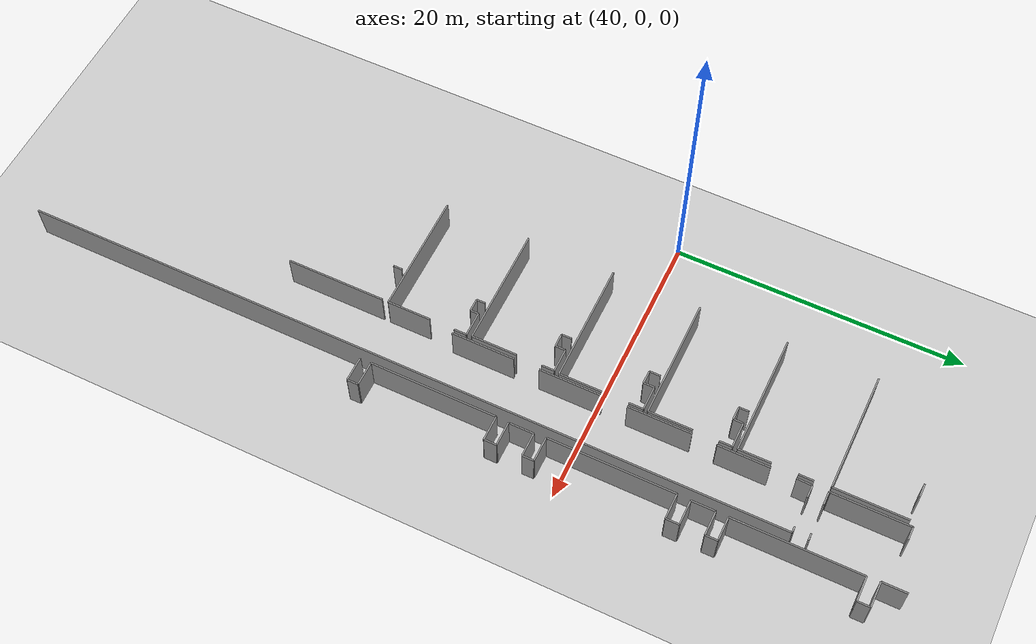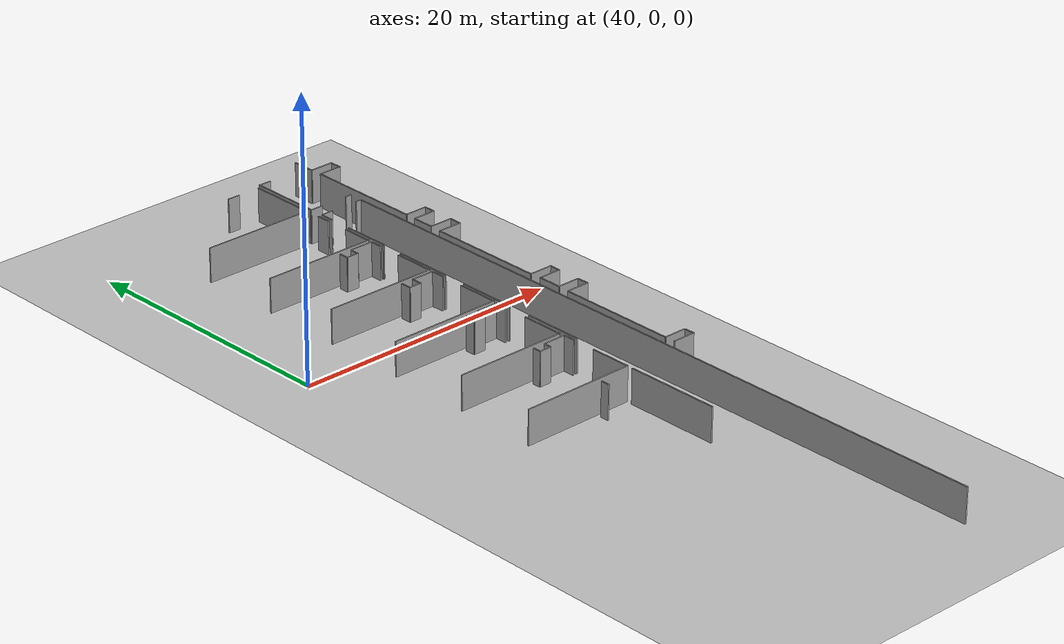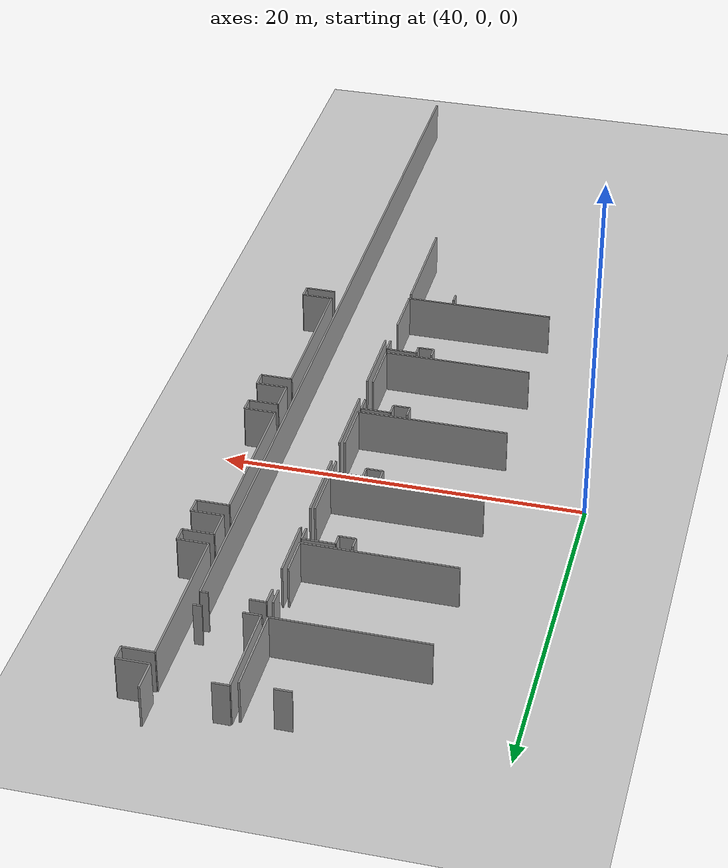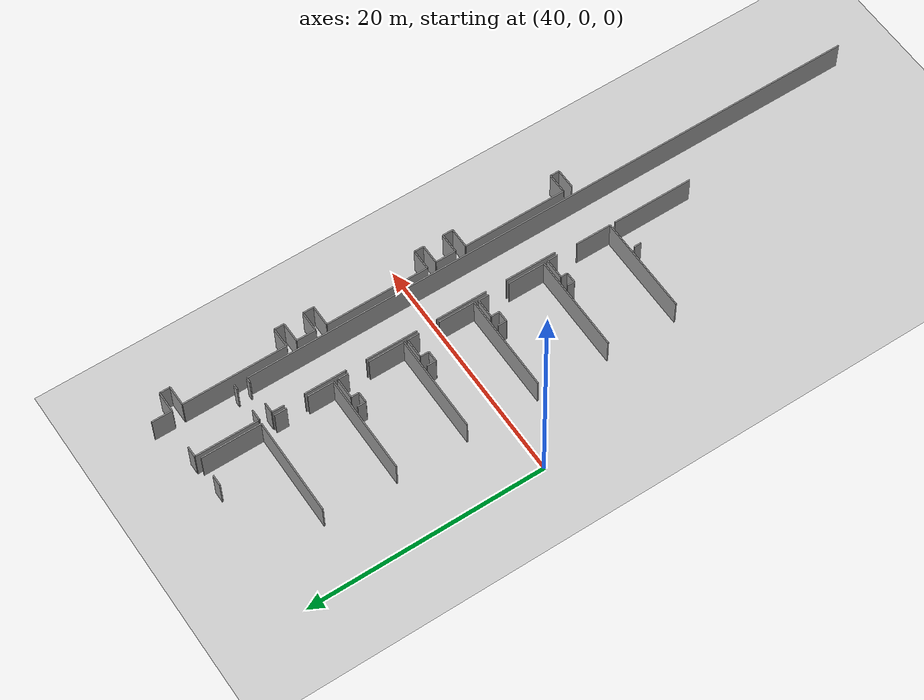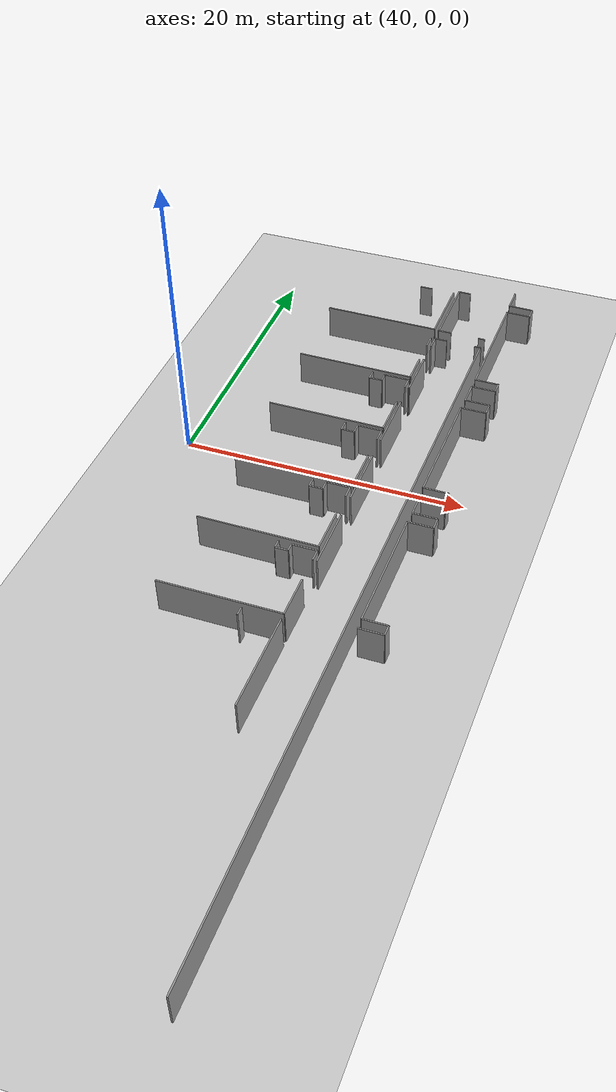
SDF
<sdf version="1.6">
 <world name="default">
  <model name="ground_plane">
   <static>1</static>
   <link name="link">
    <collision name="collision">
     <geometry><plane><normal>0 0 1</normal><size>100 100</size></plane></geometry>
     <surface><friction><ode><mu>100</mu><mu2>50</mu2></ode></friction></surface>
    </collision>
    <visual name="visual">
     <cast_shadows>0</cast_shadows>
     <geometry><plane><normal>0 0 1</normal><size>100 100</size></plane></geometry>
     <material>
      <script><uri>file://media/materials/scripts/gazebo.material</uri><name>Gazebo/Grey</name></script>
     </material>
    </visual>
   </link>
  </model>
  <model name="50036893">
   <static>1</static>
   <link name="Wall_328">
    <collision name="Wall_328_Collision">
     <geometry><box><size>1.70178230628 0.1 2.5</size></box></geometry>
     <pose>0.850891153141 0 1.25 0 0 0</pose>
    </collision>
    <visual name="Wall_328_Visual">
     <pose>0.850891153141 0 1.25 0 0 0</pose>
     <geometry><box><size>1.70178230628 0.1 2.5</size></box></geometry>
     <material>
      <script><uri>file://media/materials/scripts/gazebo.material</uri><name>Gazebo/Grey</name></script>
      <ambient>1 1 1 1</ambient>
     </material>
    </visual>
    <pose>131.874940558 -82.4677111535 0 0 0 0.0</pose>
   </link>
   <link name="Wall_329">
    <collision name="Wall_329_Collision">
     <geometry><box><size>0.769225891946 0.1 2.5</size></box></geometry>
     <pose>0.384612945973 0 1.25 0 0 0</pose>
    </collision>
    <visual name="Wall_329_Visual">
     <pose>0.384612945973 0 1.25 0 0 0</pose>
     <geometry><box><size>0.769225891946 0.1 2.5</size></box></geometry>
     <material>
      <script><uri>file://media/materials/scripts/gazebo.material</uri><name>Gazebo/Grey</name></script>
      <ambient>1 1 1 1</ambient>
     </material>
    </visual>
    <pose>133.576722864 -82.4677111535 0 0 0 1.57079632679</pose>
   </link>
   <link name="Wall_330">
    <collision name="Wall_330_Collision">
     <geometry><box><size>1.70178230628 0.1 2.5</size></box></geometry>
     <pose>0.850891153141 0 1.25 0 0 0</pose>
    </collision>
    <visual name="Wall_330_Visual">
     <pose>0.850891153141 0 1.25 0 0 0</pose>
     <geometry><box><size>1.70178230628 0.1 2.5</size></box></geometry>
     <material>
      <script><uri>file://media/materials/scripts/gazebo.material</uri><name>Gazebo/Grey</name></script>
      <ambient>1 1 1 1</ambient>
     </material>
    </visual>
    <pose>133.576722864 -81.6984852616 0 0 0 3.14159265359</pose>
   </link>
   <link name="Wall_331">
    <collision name="Wall_331_Collision">
     <geometry><box><size>8.80133403501 0.1 2.5</size></box></geometry>
     <pose>4.40066701751 0 1.25 0 0 0</pose>
    </collision>
    <visual name="Wall_331_Visual">
     <pose>4.40066701751 0 1.25 0 0 0</pose>
     <geometry><box><size>8.80133403501 0.1 2.5</size></box></geometry>
     <material>
      <script><uri>file://media/materials/scripts/gazebo.material</uri><name>Gazebo/Grey</name></script>
      <ambient>1 1 1 1</ambient>
     </material>
    </visual>
    <pose>131.874940558 -81.6984852616 0 0 0 1.57079632679</pose>
   </link>
   <link name="Wall_332">
    <collision name="Wall_332_Collision">
     <geometry><box><size>1.73982512982 0.1 2.5</size></box></geometry>
     <pose>0.869912564911 0 1.25 0 0 0</pose>
    </collision>
    <visual name="Wall_332_Visual">
     <pose>0.869912564911 0 1.25 0 0 0</pose>
     <geometry><box><size>1.73982512982 0.1 2.5</size></box></geometry>
     <material>
      <script><uri>file://media/materials/scripts/gazebo.material</uri><name>Gazebo/Grey</name></script>
      <ambient>1 1 1 1</ambient>
     </material>
    </visual>
    <pose>131.874940558 -72.8971512266 0 0 0 0.0</pose>
   </link>
   <link name="Wall_333">
    <collision name="Wall_333_Collision">
     <geometry><box><size>0.869912564911 0.1 2.5</size></box></geometry>
     <pose>0.434956282455 0 1.25 0 0 0</pose>
    </collision>
    <visual name="Wall_333_Visual">
     <pose>0.434956282455 0 1.25 0 0 0</pose>
     <geometry><box><size>0.869912564911 0.1 2.5</size></box></geometry>
     <material>
      <script><uri>file://media/materials/scripts/gazebo.material</uri><name>Gazebo/Grey</name></script>
      <ambient>1 1 1 1</ambient>
     </material>
    </visual>
    <pose>133.614765688 -72.8971512266 0 0 0 1.57079632679</pose>
   </link>
   <link name="Wall_334">
    <collision name="Wall_334_Collision">
     <geometry><box><size>1.6891013651 0.1 2.5</size></box></geometry>
     <pose>0.844550682552 0 1.25 0 0 0</pose>
    </collision>
    <visual name="Wall_334_Visual">
     <pose>0.844550682552 0 1.25 0 0 0</pose>
     <geometry><box><size>1.6891013651 0.1 2.5</size></box></geometry>
     <material>
      <script><uri>file://media/materials/scripts/gazebo.material</uri><name>Gazebo/Grey</name></script>
      <ambient>1 1 1 1</ambient>
     </material>
    </visual>
    <pose>133.614765688 -72.0272386617 0 0 0 3.14159265359</pose>
   </link>
   <link name="Wall_335">
    <collision name="Wall_335_Collision">
     <geometry><box><size>1.72765142629 0.1 2.5</size></box></geometry>
     <pose>0.863825713144 0 1.25 0 0 0</pose>
    </collision>
    <visual name="Wall_335_Visual">
     <pose>0.863825713144 0 1.25 0 0 0</pose>
     <geometry><box><size>1.72765142629 0.1 2.5</size></box></geometry>
     <material>
      <script><uri>file://media/materials/scripts/gazebo.material</uri><name>Gazebo/Grey</name></script>
      <ambient>1 1 1 1</ambient>
     </material>
    </visual>
    <pose>131.925664323 -72.0272386617 0 0 0 1.57079632679</pose>
   </link>
   <link name="Wall_336">
    <collision name="Wall_336_Collision">
     <geometry><box><size>1.66373948274 0.1 2.5</size></box></geometry>
     <pose>0.831869741372 0 1.25 0 0 0</pose>
    </collision>
    <visual name="Wall_336_Visual">
     <pose>0.831869741372 0 1.25 0 0 0</pose>
     <geometry><box><size>1.66373948274 0.1 2.5</size></box></geometry>
     <material>
      <script><uri>file://media/materials/scripts/gazebo.material</uri><name>Gazebo/Grey</name></script>
      <ambient>1 1 1 1</ambient>
     </material>
    </visual>
    <pose>131.925664323 -70.2995872354 0 0 0 0.0</pose>
   </link>
   <link name="Wall_337">
    <collision name="Wall_337_Collision">
     <geometry><box><size>0.806761477837 0.1 2.5</size></box></geometry>
     <pose>0.403380738918 0 1.25 0 0 0</pose>
    </collision>
    <visual name="Wall_337_Visual">
     <pose>0.403380738918 0 1.25 0 0 0</pose>
     <geometry><box><size>0.806761477837 0.1 2.5</size></box></geometry>
     <material>
      <script><uri>file://media/materials/scripts/gazebo.material</uri><name>Gazebo/Grey</name></script>
      <ambient>1 1 1 1</ambient>
     </material>
    </visual>
    <pose>133.589403806 -70.2995872354 0 0 0 1.57079632679</pose>
   </link>
   <link name="Wall_338">
    <collision name="Wall_338_Collision">
     <geometry><box><size>1.73982512982 0.1 2.5</size></box></geometry>
     <pose>0.869912564911 0 1.25 0 0 0</pose>
    </collision>
    <visual name="Wall_338_Visual">
     <pose>0.869912564911 0 1.25 0 0 0</pose>
     <geometry><box><size>1.73982512982 0.1 2.5</size></box></geometry>
     <material>
      <script><uri>file://media/materials/scripts/gazebo.material</uri><name>Gazebo/Grey</name></script>
      <ambient>1 1 1 1</ambient>
     </material>
    </visual>
    <pose>133.589403806 -69.4928257575 0 0 0 3.14159265359</pose>
   </link>
   <link name="Wall_339">
    <collision name="Wall_339_Collision">
     <geometry><box><size>8.7356467597 0.1 2.5</size></box></geometry>
     <pose>4.36782337985 0 1.25 0 0 0</pose>
    </collision>
    <visual name="Wall_339_Visual">
     <pose>4.36782337985 0 1.25 0 0 0</pose>
     <geometry><box><size>8.7356467597 0.1 2.5</size></box></geometry>
     <material>
      <script><uri>file://media/materials/scripts/gazebo.material</uri><name>Gazebo/Grey</name></script>
      <ambient>1 1 1 1</ambient>
     </material>
    </visual>
    <pose>131.849578676 -69.4928257575 0 0 0 1.57079632679</pose>
   </link>
   <link name="Wall_340">
    <collision name="Wall_340_Collision">
     <geometry><box><size>1.79308508277 0.1 2.5</size></box></geometry>
     <pose>0.896542541387 0 1.25 0 0 0</pose>
    </collision>
    <visual name="Wall_340_Visual">
     <pose>0.896542541387 0 1.25 0 0 0</pose>
     <geometry><box><size>1.79308508277 0.1 2.5</size></box></geometry>
     <material>
      <script><uri>file://media/materials/scripts/gazebo.material</uri><name>Gazebo/Grey</name></script>
      <ambient>1 1 1 1</ambient>
     </material>
    </visual>
    <pose>131.849578676 -60.7571789978 0 0 0 0.0</pose>
   </link>
   <link name="Wall_341">
    <collision name="Wall_341_Collision">
     <geometry><box><size>0.909984339038 0.1 2.5</size></box></geometry>
     <pose>0.454992169519 0 1.25 0 0 0</pose>
    </collision>
    <visual name="Wall_341_Visual">
     <pose>0.454992169519 0 1.25 0 0 0</pose>
     <geometry><box><size>0.909984339038 0.1 2.5</size></box></geometry>
     <material>
      <script><uri>file://media/materials/scripts/gazebo.material</uri><name>Gazebo/Grey</name></script>
      <ambient>1 1 1 1</ambient>
     </material>
    </visual>
    <pose>133.642663759 -60.7571789978 0 0 0 1.57079632679</pose>
   </link>
   <link name="Wall_342">
    <collision name="Wall_342_Collision">
     <geometry><box><size>1.74236131806 0.1 2.5</size></box></geometry>
     <pose>0.871180659029 0 1.25 0 0 0</pose>
    </collision>
    <visual name="Wall_342_Visual">
     <pose>0.871180659029 0 1.25 0 0 0</pose>
     <geometry><box><size>1.74236131806 0.1 2.5</size></box></geometry>
     <material>
      <script><uri>file://media/materials/scripts/gazebo.material</uri><name>Gazebo/Grey</name></script>
      <ambient>1 1 1 1</ambient>
     </material>
    </visual>
    <pose>133.642663759 -59.8471946588 0 0 0 3.14159265359</pose>
   </link>
   <link name="Wall_343">
    <collision name="Wall_343_Collision">
     <geometry><box><size>1.63381246156 0.1 2.5</size></box></geometry>
     <pose>0.81690623078 0 1.25 0 0 0</pose>
    </collision>
    <visual name="Wall_343_Visual">
     <pose>0.81690623078 0 1.25 0 0 0</pose>
     <geometry><box><size>1.63381246156 0.1 2.5</size></box></geometry>
     <material>
      <script><uri>file://media/materials/scripts/gazebo.material</uri><name>Gazebo/Grey</name></script>
      <ambient>1 1 1 1</ambient>
     </material>
    </visual>
    <pose>131.90030244 -59.8471946588 0 0 0 1.57079632679</pose>
   </link>
   <link name="Wall_344">
    <collision name="Wall_344_Collision">
     <geometry><box><size>1.70939087099 0.1 2.5</size></box></geometry>
     <pose>0.854695435495 0 1.25 0 0 0</pose>
    </collision>
    <visual name="Wall_344_Visual">
     <pose>0.854695435495 0 1.25 0 0 0</pose>
     <geometry><box><size>1.70939087099 0.1 2.5</size></box></geometry>
     <material>
      <script><uri>file://media/materials/scripts/gazebo.material</uri><name>Gazebo/Grey</name></script>
      <ambient>1 1 1 1</ambient>
     </material>
    </visual>
    <pose>131.90030244 -58.2133821972 0 0 0 0.0</pose>
   </link>
   <link name="Wall_345">
    <collision name="Wall_345_Collision">
     <geometry><box><size>0.833391454314 0.1 2.5</size></box></geometry>
     <pose>0.416695727157 0 1.25 0 0 0</pose>
    </collision>
    <visual name="Wall_345_Visual">
     <pose>0.416695727157 0 1.25 0 0 0</pose>
     <geometry><box><size>0.833391454314 0.1 2.5</size></box></geometry>
     <material>
      <script><uri>file://media/materials/scripts/gazebo.material</uri><name>Gazebo/Grey</name></script>
      <ambient>1 1 1 1</ambient>
     </material>
    </visual>
    <pose>133.609693311 -58.2133821972 0 0 0 1.57079632679</pose>
   </link>
   <link name="Wall_346">
    <collision name="Wall_346_Collision">
     <geometry><box><size>1.68656517687 0.1 2.5</size></box></geometry>
     <pose>0.843282588434 0 1.25 0 0 0</pose>
    </collision>
    <visual name="Wall_346_Visual">
     <pose>0.843282588434 0 1.25 0 0 0</pose>
     <geometry><box><size>1.68656517687 0.1 2.5</size></box></geometry>
     <material>
      <script><uri>file://media/materials/scripts/gazebo.material</uri><name>Gazebo/Grey</name></script>
      <ambient>1 1 1 1</ambient>
     </material>
    </visual>
    <pose>133.609693311 -57.3799907429 0 0 0 3.14159265359</pose>
   </link>
   <link name="Wall_347">
    <collision name="Wall_347_Collision">
     <geometry><box><size>8.73919742323 0.1 2.5</size></box></geometry>
     <pose>4.36959871162 0 1.25 0 0 0</pose>
    </collision>
    <visual name="Wall_347_Visual">
     <pose>4.36959871162 0 1.25 0 0 0</pose>
     <geometry><box><size>8.73919742323 0.1 2.5</size></box></geometry>
     <material>
      <script><uri>file://media/materials/scripts/gazebo.material</uri><name>Gazebo/Grey</name></script>
      <ambient>1 1 1 1</ambient>
     </material>
    </visual>
    <pose>131.923128135 -57.3799907429 0 0 0 1.57079632679</pose>
   </link>
   <link name="Wall_348">
    <collision name="Wall_348_Collision">
     <geometry><box><size>1.71192705923 0.1 2.5</size></box></geometry>
     <pose>0.855963529613 0 1.25 0 0 0</pose>
    </collision>
    <visual name="Wall_348_Visual">
     <pose>0.855963529613 0 1.25 0 0 0</pose>
     <geometry><box><size>1.71192705923 0.1 2.5</size></box></geometry>
     <material>
      <script><uri>file://media/materials/scripts/gazebo.material</uri><name>Gazebo/Grey</name></script>
      <ambient>1 1 1 1</ambient>
     </material>
    </visual>
    <pose>131.923128135 -48.6407933197 0 0 0 0.0</pose>
   </link>
   <link name="Wall_349">
    <collision name="Wall_349_Collision">
     <geometry><box><size>0.867629995498 0.1 2.5</size></box></geometry>
     <pose>0.433814997749 0 1.25 0 0 0</pose>
    </collision>
    <visual name="Wall_349_Visual">
     <pose>0.433814997749 0 1.25 0 0 0</pose>
     <geometry><box><size>0.867629995498 0.1 2.5</size></box></geometry>
     <material>
      <script><uri>file://media/materials/scripts/gazebo.material</uri><name>Gazebo/Grey</name></script>
      <ambient>1 1 1 1</ambient>
     </material>
    </visual>
    <pose>133.635055194 -48.6407933197 0 0 0 1.57079632679</pose>
   </link>
   <link name="Wall_350">
    <collision name="Wall_350_Collision">
     <geometry><box><size>1.75504225924 0.1 2.5</size></box></geometry>
     <pose>0.877521129618 0 1.25 0 0 0</pose>
    </collision>
    <visual name="Wall_350_Visual">
     <pose>0.877521129618 0 1.25 0 0 0</pose>
     <geometry><box><size>1.75504225924 0.1 2.5</size></box></geometry>
     <material>
      <script><uri>file://media/materials/scripts/gazebo.material</uri><name>Gazebo/Grey</name></script>
      <ambient>1 1 1 1</ambient>
     </material>
    </visual>
    <pose>133.635055194 -47.7731633242 0 0 0 3.14159265359</pose>
   </link>
   <link name="Wall_351">
    <collision name="Wall_351_Collision">
     <geometry><box><size>1.69772440511 0.1 2.5</size></box></geometry>
     <pose>0.848862202553 0 1.25 0 0 0</pose>
    </collision>
    <visual name="Wall_351_Visual">
     <pose>0.848862202553 0 1.25 0 0 0</pose>
     <geometry><box><size>1.69772440511 0.1 2.5</size></box></geometry>
     <material>
      <script><uri>file://media/materials/scripts/gazebo.material</uri><name>Gazebo/Grey</name></script>
      <ambient>1 1 1 1</ambient>
     </material>
    </visual>
    <pose>131.880012935 -47.7731633242 0 0 0 1.57079632679</pose>
   </link>
   <link name="Wall_397">
    <collision name="Wall_397_Collision">
     <geometry><box><size>0.608938795437 0.1 2.5</size></box></geometry>
     <pose>0.304469397719 0 1.25 0 0 0</pose>
    </collision>
    <visual name="Wall_397_Visual">
     <pose>0.304469397719 0 1.25 0 0 0</pose>
     <geometry><box><size>0.608938795437 0.1 2.5</size></box></geometry>
     <material>
      <script><uri>file://media/materials/scripts/gazebo.material</uri><name>Gazebo/Grey</name></script>
      <ambient>1 1 1 1</ambient>
     </material>
    </visual>
    <pose>124.834482015 -83.1953435584 0 0 0 -1.57079632679</pose>
   </link>
   <link name="Wall_401">
    <collision name="Wall_401_Collision">
     <geometry><box><size>6.87788887691 0.1 2.5</size></box></geometry>
     <pose>3.43894443846 0 1.25 0 0 0</pose>
    </collision>
    <visual name="Wall_401_Visual">
     <pose>3.43894443846 0 1.25 0 0 0</pose>
     <geometry><box><size>6.87788887691 0.1 2.5</size></box></geometry>
     <material>
      <script><uri>file://media/materials/scripts/gazebo.material</uri><name>Gazebo/Grey</name></script>
      <ambient>1 1 1 1</ambient>
     </material>
    </visual>
    <pose>127.416321639 -83.2531686502 0 0 0 -1.57079632679</pose>
   </link>
   <link name="Wall_406">
    <collision name="Wall_406_Collision">
     <geometry><box><size>0.619844404852 0.1 2.5</size></box></geometry>
     <pose>0.309922202426 0 1.25 0 0 0</pose>
    </collision>
    <visual name="Wall_406_Visual">
     <pose>0.309922202426 0 1.25 0 0 0</pose>
     <geometry><box><size>0.619844404852 0.1 2.5</size></box></geometry>
     <material>
      <script><uri>file://media/materials/scripts/gazebo.material</uri><name>Gazebo/Grey</name></script>
      <ambient>1 1 1 1</ambient>
     </material>
    </visual>
    <pose>124.804047756 -77.1488171852 0 0 0 -1.57079632679</pose>
   </link>
   <link name="Wall_407">
    <collision name="Wall_407_Collision">
     <geometry><box><size>0.887665882562 0.1 2.5</size></box></geometry>
     <pose>0.443832941281 0 1.25 0 0 0</pose>
    </collision>
    <visual name="Wall_407_Visual">
     <pose>0.443832941281 0 1.25 0 0 0</pose>
     <geometry><box><size>0.887665882562 0.1 2.5</size></box></geometry>
     <material>
      <script><uri>file://media/materials/scripts/gazebo.material</uri><name>Gazebo/Grey</name></script>
      <ambient>1 1 1 1</ambient>
     </material>
    </visual>
    <pose>124.804047756 -77.7686615901 0 0 0 0.0</pose>
   </link>
   <link name="Wall_408">
    <collision name="Wall_408_Collision">
     <geometry><box><size>0.572164066017 0.1 2.5</size></box></geometry>
     <pose>0.286082033008 0 1.25 0 0 0</pose>
    </collision>
    <visual name="Wall_408_Visual">
     <pose>0.286082033008 0 1.25 0 0 0</pose>
     <geometry><box><size>0.572164066017 0.1 2.5</size></box></geometry>
     <material>
      <script><uri>file://media/materials/scripts/gazebo.material</uri><name>Gazebo/Grey</name></script>
      <ambient>1 1 1 1</ambient>
     </material>
    </visual>
    <pose>125.691713639 -77.7686615901 0 0 0 1.57079632679</pose>
   </link>
   <link name="Wall_409">
    <collision name="Wall_409_Collision">
     <geometry><box><size>1.72460800041 0.1 2.5</size></box></geometry>
     <pose>0.862304000203 0 1.25 0 0 0</pose>
    </collision>
    <visual name="Wall_409_Visual">
     <pose>0.862304000203 0 1.25 0 0 0</pose>
     <geometry><box><size>1.72460800041 0.1 2.5</size></box></geometry>
     <material>
      <script><uri>file://media/materials/scripts/gazebo.material</uri><name>Gazebo/Grey</name></script>
      <ambient>1 1 1 1</ambient>
     </material>
    </visual>
    <pose>125.691713639 -77.196497524 0 0 0 0.0</pose>
   </link>
   <link name="Wall_410">
    <collision name="Wall_410_Collision">
     <geometry><box><size>0.873970466088 0.1 2.5</size></box></geometry>
     <pose>0.436985233044 0 1.25 0 0 0</pose>
    </collision>
    <visual name="Wall_410_Visual">
     <pose>0.436985233044 0 1.25 0 0 0</pose>
     <geometry><box><size>0.873970466088 0.1 2.5</size></box></geometry>
     <material>
      <script><uri>file://media/materials/scripts/gazebo.material</uri><name>Gazebo/Grey</name></script>
      <ambient>1 1 1 1</ambient>
     </material>
    </visual>
    <pose>127.416321639 -77.196497524 0 0 0 -1.57079632679</pose>
   </link>
   <link name="Wall_411">
    <collision name="Wall_411_Collision">
     <geometry><box><size>3.00335410894 0.1 2.5</size></box></geometry>
     <pose>1.50167705447 0 1.25 0 0 0</pose>
    </collision>
    <visual name="Wall_411_Visual">
     <pose>1.50167705447 0 1.25 0 0 0</pose>
     <geometry><box><size>3.00335410894 0.1 2.5</size></box></geometry>
     <material>
      <script><uri>file://media/materials/scripts/gazebo.material</uri><name>Gazebo/Grey</name></script>
      <ambient>1 1 1 1</ambient>
     </material>
    </visual>
    <pose>127.416321639 -79.8184089223 0 0 0 -1.57079632679</pose>
   </link>
   <link name="Wall_412">
    <collision name="Wall_412_Collision">
     <geometry><box><size>8.38971593227 0.1 2.5</size></box></geometry>
     <pose>4.19485796614 0 1.25 0 0 0</pose>
    </collision>
    <visual name="Wall_412_Visual">
     <pose>4.19485796614 0 1.25 0 0 0</pose>
     <geometry><box><size>8.38971593227 0.1 2.5</size></box></geometry>
     <material>
      <script><uri>file://media/materials/scripts/gazebo.material</uri><name>Gazebo/Grey</name></script>
      <ambient>1 1 1 1</ambient>
     </material>
    </visual>
    <pose>127.416321639 -82.8217630313 0 0 0 3.14047415345</pose>
   </link>
   <link name="Wall_415">
    <collision name="Wall_415_Collision">
     <geometry><box><size>0.700495190753 0.1 2.5</size></box></geometry>
     <pose>0.350247595377 0 1.25 0 0 0</pose>
    </collision>
    <visual name="Wall_415_Visual">
     <pose>0.350247595377 0 1.25 0 0 0</pose>
     <geometry><box><size>0.700495190753 0.1 2.5</size></box></geometry>
     <material>
      <script><uri>file://media/materials/scripts/gazebo.material</uri><name>Gazebo/Grey</name></script>
      <ambient>1 1 1 1</ambient>
     </material>
    </visual>
    <pose>124.783758251 -71.0371107744 0 0 0 -1.57079632679</pose>
   </link>
   <link name="Wall_416">
    <collision name="Wall_416_Collision">
     <geometry><box><size>0.933317270808 0.1 2.5</size></box></geometry>
     <pose>0.466658635404 0 1.25 0 0 0</pose>
    </collision>
    <visual name="Wall_416_Visual">
     <pose>0.466658635404 0 1.25 0 0 0</pose>
     <geometry><box><size>0.933317270808 0.1 2.5</size></box></geometry>
     <material>
      <script><uri>file://media/materials/scripts/gazebo.material</uri><name>Gazebo/Grey</name></script>
      <ambient>1 1 1 1</ambient>
     </material>
    </visual>
    <pose>124.783758251 -71.7376059651 0 0 0 0.0</pose>
   </link>
   <link name="Wall_417">
    <collision name="Wall_417_Collision">
     <geometry><box><size>0.700495190753 0.1 2.5</size></box></geometry>
     <pose>0.350247595377 0 1.25 0 0 0</pose>
    </collision>
    <visual name="Wall_417_Visual">
     <pose>0.350247595377 0 1.25 0 0 0</pose>
     <geometry><box><size>0.700495190753 0.1 2.5</size></box></geometry>
     <material>
      <script><uri>file://media/materials/scripts/gazebo.material</uri><name>Gazebo/Grey</name></script>
      <ambient>1 1 1 1</ambient>
     </material>
    </visual>
    <pose>125.717075521 -71.7376059651 0 0 0 1.57079632679</pose>
   </link>
   <link name="Wall_418">
    <collision name="Wall_418_Collision">
     <geometry><box><size>1.65105854156 0.1 2.5</size></box></geometry>
     <pose>0.825529270782 0 1.25 0 0 0</pose>
    </collision>
    <visual name="Wall_418_Visual">
     <pose>0.825529270782 0 1.25 0 0 0</pose>
     <geometry><box><size>1.65105854156 0.1 2.5</size></box></geometry>
     <material>
      <script><uri>file://media/materials/scripts/gazebo.material</uri><name>Gazebo/Grey</name></script>
      <ambient>1 1 1 1</ambient>
     </material>
    </visual>
    <pose>125.717075521 -71.0371107744 0 0 0 0.0</pose>
   </link>
   <link name="Wall_419">
    <collision name="Wall_419_Collision">
     <geometry><box><size>0.883861600208 0.1 2.5</size></box></geometry>
     <pose>0.441930800104 0 1.25 0 0 0</pose>
    </collision>
    <visual name="Wall_419_Visual">
     <pose>0.441930800104 0 1.25 0 0 0</pose>
     <geometry><box><size>0.883861600208 0.1 2.5</size></box></geometry>
     <material>
      <script><uri>file://media/materials/scripts/gazebo.material</uri><name>Gazebo/Grey</name></script>
      <ambient>1 1 1 1</ambient>
     </material>
    </visual>
    <pose>127.368134063 -71.0371107744 0 0 0 -1.57079632679</pose>
   </link>
   <link name="Wall_420">
    <collision name="Wall_420_Collision">
     <geometry><box><size>3.13777208544 0.1 2.5</size></box></geometry>
     <pose>1.56888604272 0 1.25 0 0 0</pose>
    </collision>
    <visual name="Wall_420_Visual">
     <pose>1.56888604272 0 1.25 0 0 0</pose>
     <geometry><box><size>3.13777208544 0.1 2.5</size></box></geometry>
     <material>
      <script><uri>file://media/materials/scripts/gazebo.material</uri><name>Gazebo/Grey</name></script>
      <ambient>1 1 1 1</ambient>
     </material>
    </visual>
    <pose>127.368134063 -73.6917390009 0 0 0 -1.57079632679</pose>
   </link>
   <link name="Wall_421">
    <collision name="Wall_421_Collision">
     <geometry><box><size>8.28835637946 0.1 2.5</size></box></geometry>
     <pose>4.14417818973 0 1.25 0 0 0</pose>
    </collision>
    <visual name="Wall_421_Visual">
     <pose>4.14417818973 0 1.25 0 0 0</pose>
     <geometry><box><size>8.28835637946 0.1 2.5</size></box></geometry>
     <material>
      <script><uri>file://media/materials/scripts/gazebo.material</uri><name>Gazebo/Grey</name></script>
      <ambient>1 1 1 1</ambient>
     </material>
    </visual>
    <pose>127.368134063 -76.8295110863 0 0 0 3.1368497271</pose>
   </link>
   <link name="Wall_424">
    <collision name="Wall_424_Collision">
     <geometry><box><size>0.768465035475 0.1 2.5</size></box></geometry>
     <pose>0.384232517737 0 1.25 0 0 0</pose>
    </collision>
    <visual name="Wall_424_Visual">
     <pose>0.384232517737 0 1.25 0 0 0</pose>
     <geometry><box><size>0.768465035475 0.1 2.5</size></box></geometry>
     <material>
      <script><uri>file://media/materials/scripts/gazebo.material</uri><name>Gazebo/Grey</name></script>
      <ambient>1 1 1 1</ambient>
     </material>
    </visual>
    <pose>124.821801074 -64.8663111776 0 0 0 -1.57079632679</pose>
   </link>
   <link name="Wall_425">
    <collision name="Wall_425_Collision">
     <geometry><box><size>0.913027764921 0.1 2.5</size></box></geometry>
     <pose>0.45651388246 0 1.25 0 0 0</pose>
    </collision>
    <visual name="Wall_425_Visual">
     <pose>0.45651388246 0 1.25 0 0 0</pose>
     <geometry><box><size>0.913027764921 0.1 2.5</size></box></geometry>
     <material>
      <script><uri>file://media/materials/scripts/gazebo.material</uri><name>Gazebo/Grey</name></script>
      <ambient>1 1 1 1</ambient>
     </material>
    </visual>
    <pose>124.821801074 -65.6347762131 0 0 0 0.0</pose>
   </link>
   <link name="Wall_426">
    <collision name="Wall_426_Collision">
     <geometry><box><size>0.739552489586 0.1 2.5</size></box></geometry>
     <pose>0.369776244793 0 1.25 0 0 0</pose>
    </collision>
    <visual name="Wall_426_Visual">
     <pose>0.369776244793 0 1.25 0 0 0</pose>
     <geometry><box><size>0.739552489586 0.1 2.5</size></box></geometry>
     <material>
      <script><uri>file://media/materials/scripts/gazebo.material</uri><name>Gazebo/Grey</name></script>
      <ambient>1 1 1 1</ambient>
     </material>
    </visual>
    <pose>125.734828839 -65.6347762131 0 0 0 1.57079632679</pose>
   </link>
   <link name="Wall_427">
    <collision name="Wall_427_Collision">
     <geometry><box><size>1.70939087099 0.1 2.5</size></box></geometry>
     <pose>0.854695435495 0 1.25 0 0 0</pose>
    </collision>
    <visual name="Wall_427_Visual">
     <pose>0.854695435495 0 1.25 0 0 0</pose>
     <geometry><box><size>1.70939087099 0.1 2.5</size></box></geometry>
     <material>
      <script><uri>file://media/materials/scripts/gazebo.material</uri><name>Gazebo/Grey</name></script>
      <ambient>1 1 1 1</ambient>
     </material>
    </visual>
    <pose>125.734828839 -64.8952237235 0 0 0 0.0</pose>
   </link>
   <link name="Wall_428">
    <collision name="Wall_428_Collision">
     <geometry><box><size>1.00077987788 0.1 2.5</size></box></geometry>
     <pose>0.500389938941 0 1.25 0 0 0</pose>
    </collision>
    <visual name="Wall_428_Visual">
     <pose>0.500389938941 0 1.25 0 0 0</pose>
     <geometry><box><size>1.00077987788 0.1 2.5</size></box></geometry>
     <material>
      <script><uri>file://media/materials/scripts/gazebo.material</uri><name>Gazebo/Grey</name></script>
      <ambient>1 1 1 1</ambient>
     </material>
    </visual>
    <pose>127.44421971 -64.8952237235 0 0 0 -1.57079632679</pose>
   </link>
   <link name="Wall_429">
    <collision name="Wall_429_Collision">
     <geometry><box><size>3.05255616072 0.1 2.5</size></box></geometry>
     <pose>1.52627808036 0 1.25 0 0 0</pose>
    </collision>
    <visual name="Wall_429_Visual">
     <pose>1.52627808036 0 1.25 0 0 0</pose>
     <geometry><box><size>3.05255616072 0.1 2.5</size></box></geometry>
     <material>
      <script><uri>file://media/materials/scripts/gazebo.material</uri><name>Gazebo/Grey</name></script>
      <ambient>1 1 1 1</ambient>
     </material>
    </visual>
    <pose>127.44421971 -67.6353214936 0 0 0 -1.57079632679</pose>
   </link>
   <link name="Wall_430">
    <collision name="Wall_430_Collision">
     <geometry><box><size>8.33647795272 0.1 2.5</size></box></geometry>
     <pose>4.16823897636 0 1.25 0 0 0</pose>
    </collision>
    <visual name="Wall_430_Visual">
     <pose>4.16823897636 0 1.25 0 0 0</pose>
     <geometry><box><size>8.33647795272 0.1 2.5</size></box></geometry>
     <material>
      <script><uri>file://media/materials/scripts/gazebo.material</uri><name>Gazebo/Grey</name></script>
      <ambient>1 1 1 1</ambient>
     </material>
    </visual>
    <pose>127.44421971 -70.6878776543 0 0 0 3.1390371374</pose>
   </link>
   <link name="Wall_433">
    <collision name="Wall_433_Collision">
     <geometry><box><size>0.701763284871 0.1 2.5</size></box></geometry>
     <pose>0.350881642436 0 1.25 0 0 0</pose>
    </collision>
    <visual name="Wall_433_Visual">
     <pose>0.350881642436 0 1.25 0 0 0</pose>
     <geometry><box><size>0.701763284871 0.1 2.5</size></box></geometry>
     <material>
      <script><uri>file://media/materials/scripts/gazebo.material</uri><name>Gazebo/Grey</name></script>
      <ambient>1 1 1 1</ambient>
     </material>
    </visual>
    <pose>124.760932556 -58.9042398727 0 0 0 -1.57079632679</pose>
   </link>
   <link name="Wall_434">
    <collision name="Wall_434_Collision">
     <geometry><box><size>0.910491576685 0.1 2.5</size></box></geometry>
     <pose>0.455245788342 0 1.25 0 0 0</pose>
    </collision>
    <visual name="Wall_434_Visual">
     <pose>0.455245788342 0 1.25 0 0 0</pose>
     <geometry><box><size>0.910491576685 0.1 2.5</size></box></geometry>
     <material>
      <script><uri>file://media/materials/scripts/gazebo.material</uri><name>Gazebo/Grey</name></script>
      <ambient>1 1 1 1</ambient>
     </material>
    </visual>
    <pose>124.760932556 -59.6060031576 0 0 0 0.0</pose>
   </link>
   <link name="Wall_435">
    <collision name="Wall_435_Collision">
     <geometry><box><size>0.669046456628 0.1 2.5</size></box></geometry>
     <pose>0.334523228314 0 1.25 0 0 0</pose>
    </collision>
    <visual name="Wall_435_Visual">
     <pose>0.334523228314 0 1.25 0 0 0</pose>
     <geometry><box><size>0.669046456628 0.1 2.5</size></box></geometry>
     <material>
      <script><uri>file://media/materials/scripts/gazebo.material</uri><name>Gazebo/Grey</name></script>
      <ambient>1 1 1 1</ambient>
     </material>
    </visual>
    <pose>125.671424133 -59.6060031576 0 0 0 1.57079632679</pose>
   </link>
   <link name="Wall_436">
    <collision name="Wall_436_Collision">
     <geometry><box><size>1.7880127063 0.1 2.5</size></box></geometry>
     <pose>0.894006353152 0 1.25 0 0 0</pose>
    </collision>
    <visual name="Wall_436_Visual">
     <pose>0.894006353152 0 1.25 0 0 0</pose>
     <geometry><box><size>1.7880127063 0.1 2.5</size></box></geometry>
     <material>
      <script><uri>file://media/materials/scripts/gazebo.material</uri><name>Gazebo/Grey</name></script>
      <ambient>1 1 1 1</ambient>
     </material>
    </visual>
    <pose>125.671424133 -58.9369567009 0 0 0 0.0</pose>
   </link>
   <link name="Wall_437">
    <collision name="Wall_437_Collision">
     <geometry><box><size>0.888173120209 0.1 2.5</size></box></geometry>
     <pose>0.444086560104 0 1.25 0 0 0</pose>
    </collision>
    <visual name="Wall_437_Visual">
     <pose>0.444086560104 0 1.25 0 0 0</pose>
     <geometry><box><size>0.888173120209 0.1 2.5</size></box></geometry>
     <material>
      <script><uri>file://media/materials/scripts/gazebo.material</uri><name>Gazebo/Grey</name></script>
      <ambient>1 1 1 1</ambient>
     </material>
    </visual>
    <pose>127.459436839 -58.9369567009 0 0 0 -1.57079632679</pose>
   </link>
   <link name="Wall_438">
    <collision name="Wall_438_Collision">
     <geometry><box><size>3.01628866894 0.1 2.5</size></box></geometry>
     <pose>1.50814433447 0 1.25 0 0 0</pose>
    </collision>
    <visual name="Wall_438_Visual">
     <pose>1.50814433447 0 1.25 0 0 0</pose>
     <geometry><box><size>3.01628866894 0.1 2.5</size></box></geometry>
     <material>
      <script><uri>file://media/materials/scripts/gazebo.material</uri><name>Gazebo/Grey</name></script>
      <ambient>1 1 1 1</ambient>
     </material>
    </visual>
    <pose>127.459436839 -61.5745924663 0 0 0 -1.57079632679</pose>
   </link>
   <link name="Wall_439">
    <collision name="Wall_439_Collision">
     <geometry><box><size>8.34667761911 0.1 2.5</size></box></geometry>
     <pose>4.17333880956 0 1.25 0 0 0</pose>
    </collision>
    <visual name="Wall_439_Visual">
     <pose>4.17333880956 0 1.25 0 0 0</pose>
     <geometry><box><size>8.34667761911 0.1 2.5</size></box></geometry>
     <material>
      <script><uri>file://media/materials/scripts/gazebo.material</uri><name>Gazebo/Grey</name></script>
      <ambient>1 1 1 1</ambient>
     </material>
    </visual>
    <pose>127.459436839 -64.5908811352 0 0 0 3.13715634116</pose>
   </link>
   <link name="Wall_442">
    <collision name="Wall_442_Collision">
     <geometry><box><size>1.01980128965 0.1 2.5</size></box></geometry>
     <pose>0.509900644826 0 1.25 0 0 0</pose>
    </collision>
    <visual name="Wall_442_Visual">
     <pose>0.509900644826 0 1.25 0 0 0</pose>
     <geometry><box><size>1.01980128965 0.1 2.5</size></box></geometry>
     <material>
      <script><uri>file://media/materials/scripts/gazebo.material</uri><name>Gazebo/Grey</name></script>
      <ambient>1 1 1 1</ambient>
     </material>
    </visual>
    <pose>127.464509216 -53.6086788361 0 0 0 -1.57079632679</pose>
   </link>
   <link name="Wall_443">
    <collision name="Wall_443_Collision">
     <geometry><box><size>2.20546928993 0.1 2.5</size></box></geometry>
     <pose>1.10273464497 0 1.25 0 0 0</pose>
    </collision>
    <visual name="Wall_443_Visual">
     <pose>1.10273464497 0 1.25 0 0 0</pose>
     <geometry><box><size>2.20546928993 0.1 2.5</size></box></geometry>
     <material>
      <script><uri>file://media/materials/scripts/gazebo.material</uri><name>Gazebo/Grey</name></script>
      <ambient>1 1 1 1</ambient>
     </material>
    </visual>
    <pose>127.464509216 -56.3865658109 0 0 0 -1.57079632679</pose>
   </link>
   <link name="Wall_444">
    <collision name="Wall_444_Collision">
     <geometry><box><size>8.36953354235 0.1 2.5</size></box></geometry>
     <pose>4.18476677118 0 1.25 0 0 0</pose>
    </collision>
    <visual name="Wall_444_Visual">
     <pose>4.18476677118 0 1.25 0 0 0</pose>
     <geometry><box><size>8.36953354235 0.1 2.5</size></box></geometry>
     <material>
      <script><uri>file://media/materials/scripts/gazebo.material</uri><name>Gazebo/Grey</name></script>
      <ambient>1 1 1 1</ambient>
     </material>
    </visual>
    <pose>127.464509216 -58.5920351008 0 0 0 3.13641088179</pose>
   </link>
   <link name="Wall_445">
    <collision name="Wall_445_Collision">
     <geometry><box><size>0.88259350609 0.1 2.5</size></box></geometry>
     <pose>0.441296753045 0 1.25 0 0 0</pose>
    </collision>
    <visual name="Wall_445_Visual">
     <pose>0.441296753045 0 1.25 0 0 0</pose>
     <geometry><box><size>0.88259350609 0.1 2.5</size></box></geometry>
     <material>
      <script><uri>file://media/materials/scripts/gazebo.material</uri><name>Gazebo/Grey</name></script>
      <ambient>1 1 1 1</ambient>
     </material>
    </visual>
    <pose>127.78914131 -53.5924472314 0 0 0 0.0</pose>
   </link>
   <link name="Wall_446">
    <collision name="Wall_446_Collision">
     <geometry><box><size>0.436224376573 0.1 2.5</size></box></geometry>
     <pose>0.218112188287 0 1.25 0 0 0</pose>
    </collision>
    <visual name="Wall_446_Visual">
     <pose>0.218112188287 0 1.25 0 0 0</pose>
     <geometry><box><size>0.436224376573 0.1 2.5</size></box></geometry>
     <material>
      <script><uri>file://media/materials/scripts/gazebo.material</uri><name>Gazebo/Grey</name></script>
      <ambient>1 1 1 1</ambient>
     </material>
    </visual>
    <pose>130.77930724 -53.5924472314 0 0 0 0.0</pose>
   </link>
   <link name="Wall_447">
    <collision name="Wall_447_Collision">
     <geometry><box><size>53.5779909585 0.1 2.5</size></box></geometry>
     <pose>26.7889954792 0 1.25 0 0 0</pose>
    </collision>
    <visual name="Wall_447_Visual">
     <pose>26.7889954792 0 1.25 0 0 0</pose>
     <geometry><box><size>53.5779909585 0.1 2.5</size></box></geometry>
     <material>
      <script><uri>file://media/materials/scripts/gazebo.material</uri><name>Gazebo/Grey</name></script>
      <ambient>1 1 1 1</ambient>
     </material>
    </visual>
    <pose>131.215531617 -53.5924472314 0 0 0 -1.57079632679</pose>
   </link>
   <link name="Wall_454">
    <collision name="Wall_454_Collision">
     <geometry><box><size>4.38583031633 0.1 2.5</size></box></geometry>
     <pose>2.19291515816 0 1.25 0 0 0</pose>
    </collision>
    <visual name="Wall_454_Visual">
     <pose>2.19291515816 0 1.25 0 0 0</pose>
     <geometry><box><size>4.38583031633 0.1 2.5</size></box></geometry>
     <material>
      <script><uri>file://media/materials/scripts/gazebo.material</uri><name>Gazebo/Grey</name></script>
      <ambient>1 1 1 1</ambient>
     </material>
    </visual>
    <pose>127.70291091 -78.0737650348 0 0 0 1.57079632679</pose>
   </link>
   <link name="Wall_455">
    <collision name="Wall_455_Collision">
     <geometry><box><size>4.3371355022 0.1 2.5</size></box></geometry>
     <pose>2.1685677511 0 1.25 0 0 0</pose>
    </collision>
    <visual name="Wall_455_Visual">
     <pose>2.1685677511 0 1.25 0 0 0</pose>
     <geometry><box><size>4.3371355022 0.1 2.5</size></box></geometry>
     <material>
      <script><uri>file://media/materials/scripts/gazebo.material</uri><name>Gazebo/Grey</name></script>
      <ambient>1 1 1 1</ambient>
     </material>
    </visual>
    <pose>127.70291091 -71.9230013252 0 0 0 1.57079632679</pose>
   </link>
   <link name="Wall_456">
    <collision name="Wall_456_Collision">
     <geometry><box><size>4.36807699867 0.1 2.5</size></box></geometry>
     <pose>2.18403849934 0 1.25 0 0 0</pose>
    </collision>
    <visual name="Wall_456_Visual">
     <pose>2.18403849934 0 1.25 0 0 0</pose>
     <geometry><box><size>4.36807699867 0.1 2.5</size></box></geometry>
     <material>
      <script><uri>file://media/materials/scripts/gazebo.material</uri><name>Gazebo/Grey</name></script>
      <ambient>1 1 1 1</ambient>
     </material>
    </visual>
    <pose>127.70291091 -65.8790111402 0 0 0 1.57079632679</pose>
   </link>
   <link name="Wall_457">
    <collision name="Wall_457_Collision">
     <geometry><box><size>0.0608685176614 0.1 2.5</size></box></geometry>
     <pose>0.0304342588307 0 1.25 0 0 0</pose>
    </collision>
    <visual name="Wall_457_Visual">
     <pose>0.0304342588307 0 1.25 0 0 0</pose>
     <geometry><box><size>0.0608685176614 0.1 2.5</size></box></geometry>
     <material>
      <script><uri>file://media/materials/scripts/gazebo.material</uri><name>Gazebo/Grey</name></script>
      <ambient>1 1 1 1</ambient>
     </material>
    </visual>
    <pose>127.70291091 -59.8142242117 0 0 0 0.0</pose>
   </link>
   <link name="Wall_458">
    <collision name="Wall_458_Collision">
     <geometry><box><size>3.51084537494 0.1 2.5</size></box></geometry>
     <pose>1.75542268747 0 1.25 0 0 0</pose>
    </collision>
    <visual name="Wall_458_Visual">
     <pose>1.75542268747 0 1.25 0 0 0</pose>
     <geometry><box><size>3.51084537494 0.1 2.5</size></box></geometry>
     <material>
      <script><uri>file://media/materials/scripts/gazebo.material</uri><name>Gazebo/Grey</name></script>
      <ambient>1 1 1 1</ambient>
     </material>
    </visual>
    <pose>127.763779428 -59.8142242117 0 0 0 1.57079632679</pose>
   </link>
   <link name="Wall_459">
    <collision name="Wall_459_Collision">
     <geometry><box><size>1.03634327483 0.1 2.5</size></box></geometry>
     <pose>0.518171637413 0 1.25 0 0 0</pose>
    </collision>
    <visual name="Wall_459_Visual">
     <pose>0.518171637413 0 1.25 0 0 0</pose>
     <geometry><box><size>1.03634327483 0.1 2.5</size></box></geometry>
     <material>
      <script><uri>file://media/materials/scripts/gazebo.material</uri><name>Gazebo/Grey</name></script>
      <ambient>1 1 1 1</ambient>
     </material>
    </visual>
    <pose>127.763779428 -54.6284801258 0 0 0 1.5463214108</pose>
   </link>
   <link name="Wall_460">
    <collision name="Wall_460_Collision">
     <geometry><box><size>5.24001851417 0.1 2.5</size></box></geometry>
     <pose>2.62000925709 0 1.25 0 0 0</pose>
    </collision>
    <visual name="Wall_460_Visual">
     <pose>2.62000925709 0 1.25 0 0 0</pose>
     <geometry><box><size>5.24001851417 0.1 2.5</size></box></geometry>
     <material>
      <script><uri>file://media/materials/scripts/gazebo.material</uri><name>Gazebo/Grey</name></script>
      <ambient>1 1 1 1</ambient>
     </material>
    </visual>
    <pose>127.751098487 -52.4448220547 0 0 0 1.57079632679</pose>
   </link>
   <link name="Wall_461">
    <collision name="Wall_461_Collision">
     <geometry><box><size>0.902883011977 0.1 2.5</size></box></geometry>
     <pose>0.451441505989 0 1.25 0 0 0</pose>
    </collision>
    <visual name="Wall_461_Visual">
     <pose>0.451441505989 0 1.25 0 0 0</pose>
     <geometry><box><size>0.902883011977 0.1 2.5</size></box></geometry>
     <material>
      <script><uri>file://media/materials/scripts/gazebo.material</uri><name>Gazebo/Grey</name></script>
      <ambient>1 1 1 1</ambient>
     </material>
    </visual>
    <pose>127.751098487 -47.2048035405 0 0 0 0.0</pose>
   </link>
   <link name="Wall_464">
    <collision name="Wall_464_Collision">
     <geometry><box><size>0.476803388347 0.1 2.5</size></box></geometry>
     <pose>0.238401694174 0 1.25 0 0 0</pose>
    </collision>
    <visual name="Wall_464_Visual">
     <pose>0.238401694174 0 1.25 0 0 0</pose>
     <geometry><box><size>0.476803388347 0.1 2.5</size></box></geometry>
     <material>
      <script><uri>file://media/materials/scripts/gazebo.material</uri><name>Gazebo/Grey</name></script>
      <ambient>1 1 1 1</ambient>
     </material>
    </visual>
    <pose>131.256110629 -52.54068997 0 0 0 3.14159265359</pose>
   </link>
   <link name="Wall_465">
    <collision name="Wall_465_Collision">
     <geometry><box><size>0.956142964931 0.1 2.5</size></box></geometry>
     <pose>0.478071482465 0 1.25 0 0 0</pose>
    </collision>
    <visual name="Wall_465_Visual">
     <pose>0.478071482465 0 1.25 0 0 0</pose>
     <geometry><box><size>0.956142964931 0.1 2.5</size></box></geometry>
     <material>
      <script><uri>file://media/materials/scripts/gazebo.material</uri><name>Gazebo/Grey</name></script>
      <ambient>1 1 1 1</ambient>
     </material>
    </visual>
    <pose>128.692024322 -52.54068997 0 0 0 3.14159265359</pose>
   </link>
   <link name="Wall_466">
    <collision name="Wall_466_Collision">
     <geometry><box><size>0.0970681112148 0.1 2.5</size></box></geometry>
     <pose>0.0485340556074 0 1.25 0 0 0</pose>
    </collision>
    <visual name="Wall_466_Visual">
     <pose>0.0485340556074 0 1.25 0 0 0</pose>
     <geometry><box><size>0.0970681112148 0.1 2.5</size></box></geometry>
     <material>
      <script><uri>file://media/materials/scripts/gazebo.material</uri><name>Gazebo/Grey</name></script>
      <ambient>1 1 1 1</ambient>
     </material>
    </visual>
    <pose>127.735881357 -52.54068997 0 0 0 1.41337945407</pose>
   </link>
   <link name="Wall_478">
    <collision name="Wall_478_Collision">
     <geometry><box><size>0.928244894336 0.1 2.5</size></box></geometry>
     <pose>0.464122447168 0 1.25 0 0 0</pose>
    </collision>
    <visual name="Wall_478_Visual">
     <pose>0.464122447168 0 1.25 0 0 0</pose>
     <geometry><box><size>0.928244894336 0.1 2.5</size></box></geometry>
     <material>
      <script><uri>file://media/materials/scripts/gazebo.material</uri><name>Gazebo/Grey</name></script>
      <ambient>1 1 1 1</ambient>
     </material>
    </visual>
    <pose>124.763468745 -47.4944362371 0 0 0 0.0</pose>
   </link>
   <link name="Wall_479">
    <collision name="Wall_479_Collision">
     <geometry><box><size>5.00288491412 0.1 2.5</size></box></geometry>
     <pose>2.50144245706 0 1.25 0 0 0</pose>
    </collision>
    <visual name="Wall_479_Visual">
     <pose>2.50144245706 0 1.25 0 0 0</pose>
     <geometry><box><size>5.00288491412 0.1 2.5</size></box></geometry>
     <material>
      <script><uri>file://media/materials/scripts/gazebo.material</uri><name>Gazebo/Grey</name></script>
      <ambient>1 1 1 1</ambient>
     </material>
    </visual>
    <pose>127.396032134 -47.4944362371 0 0 0 -1.57079632679</pose>
   </link>
   <link name="Wall_480">
    <collision name="Wall_480_Collision">
     <geometry><box><size>8.30363832591 0.1 2.5</size></box></geometry>
     <pose>4.15181916295 0 1.25 0 0 0</pose>
    </collision>
    <visual name="Wall_480_Visual">
     <pose>4.15181916295 0 1.25 0 0 0</pose>
     <geometry><box><size>8.30363832591 0.1 2.5</size></box></geometry>
     <material>
      <script><uri>file://media/materials/scripts/gazebo.material</uri><name>Gazebo/Grey</name></script>
      <ambient>1 1 1 1</ambient>
     </material>
    </visual>
    <pose>127.396032134 -52.4973211512 0 0 0 3.13542290903</pose>
   </link>
   <pose>-74.25 67.8925905261 0 0 0 0</pose>
  </model>
 </world>
</sdf>
